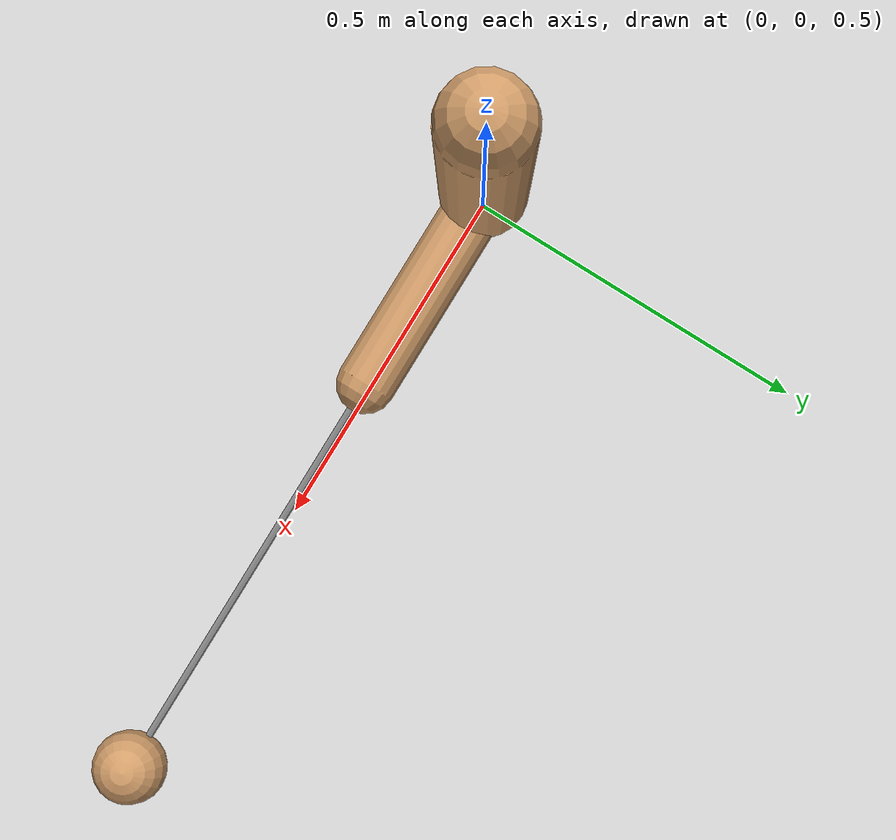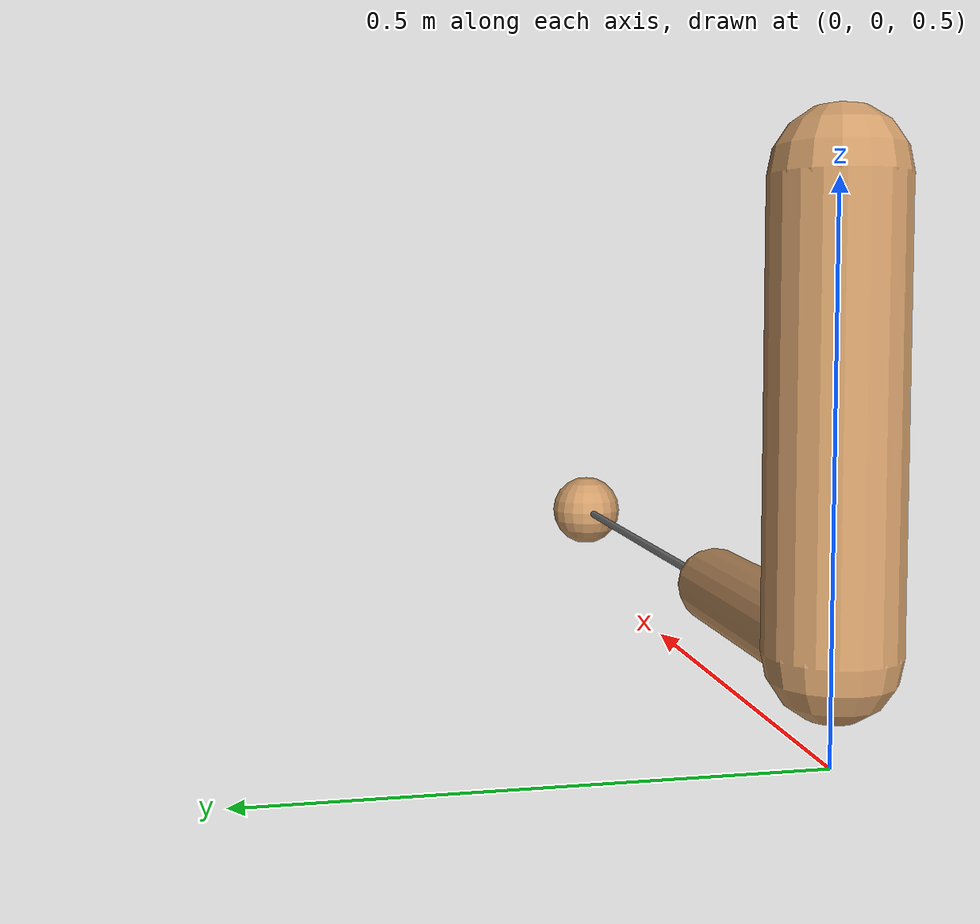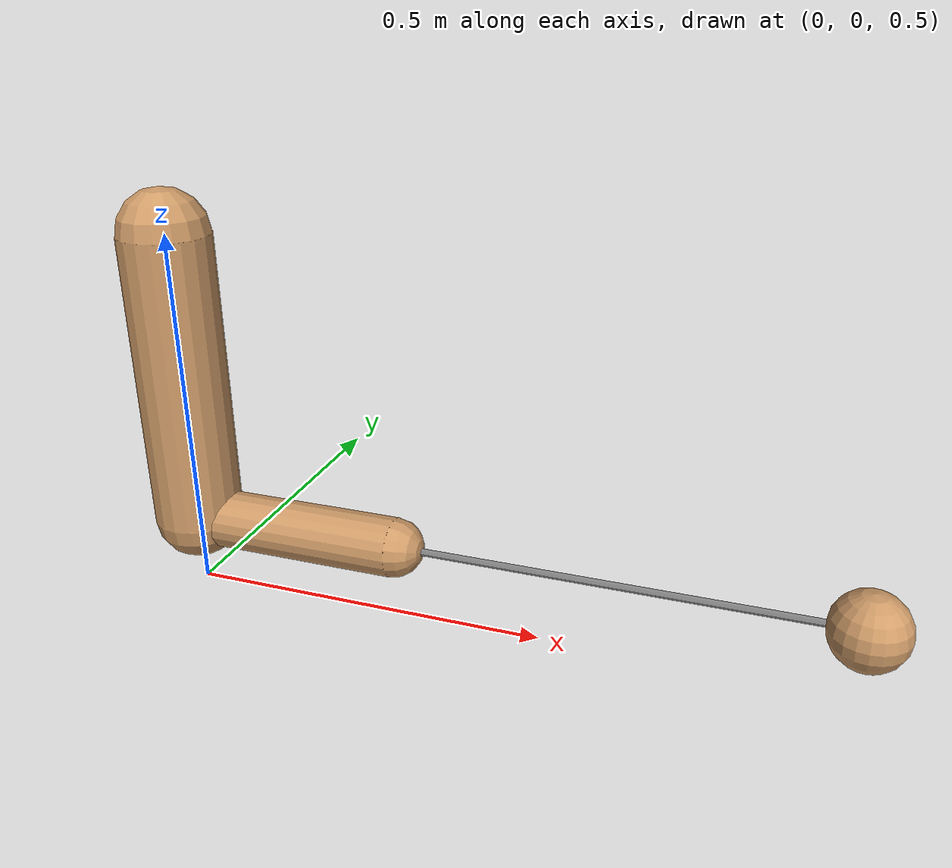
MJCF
<mujoco model="example">
  <compiler coordinate="global" autolimits="true"/>

  <default>
    <geom rgba=".8 .6 .4 1"/>
  </default>

  <asset>
    <texture type="skybox" builtin="gradient" rgb1="1 1 1" rgb2=".6 .8 1" width="256" height="256"/>
  </asset>

  <worldbody>
    <light pos="0 1 1" dir="0 -1 -1" diffuse="1 1 1"/>

    <body name='upper_arm'>
      <geom type="capsule" fromto="0 0 1.0  0 0 0.6" size="0.06"/>
      <joint name="shoulder" type="ball" pos="0 0 1"/>

      <body name='lower_arm'>
        <geom type="capsule" fromto="0 0 0.6  0.3 0 0.6" size="0.04" friction="1.0 0.5 0.1"/>
        <joint name='elbow' type="hinge" pos="0 0 0.6" axis="0 1 0"/>
        <site name="end1" pos="0.3 0 0.6" type="sphere" size="0.01"/>

      </body>

    </body>

    <body name='ball'>
      <geom type="sphere" pos="0.9 0 0.6" size="0.05"/>
      <site name="end2" pos="0.9 0 0.6" type="sphere" size="0.01"/>
      <joint type="free"/>
    </body>

  </worldbody>

  <tendon>
    <spatial limited="true" range="0 0.6" width="0.005">
      <site site="end1"/>
      <site site="end2"/>
    </spatial>
  </tendon>

  <actuator>
    <motor name="shoulder_motor" joint="shoulder" ctrlrange="-1 1" gear="50"/>
    <motor name="elbow_motor" joint="elbow" ctrlrange="-1 1" gear="50"/>
  </actuator>

</mujoco>
